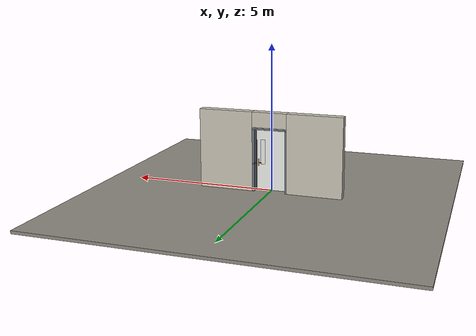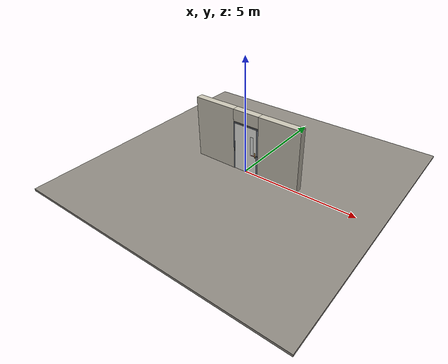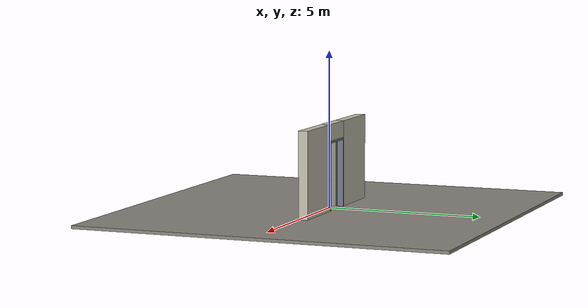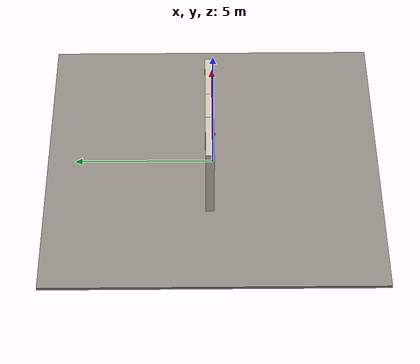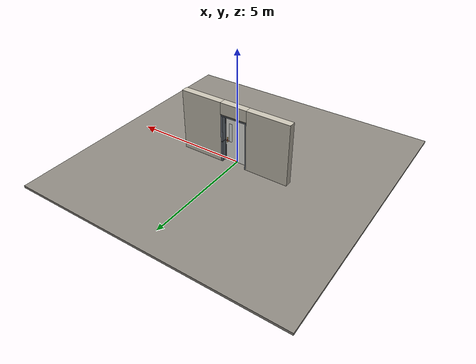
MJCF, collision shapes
<?xml version="1.0" ?>
<mujoco model="db0513_swing_single_full">
  <compiler angle="radian" meshdir="../../hardware" texturedir="../../textures" autolimits="true" inertiafromgeom="false"/>
  <option timestep="0.002" integrator="implicitfast" cone="elliptic" impratio="10" noslip_iterations="3">
    <flag multiccd="enable"/>
  </option>
  <size memory="16M"/>
  <default>
    <geom condim="4" solref="0.005 1" solimp="0.95 0.99 0.001"/>
    <joint solreflimit="0.005 1" solimplimit="0.95 0.99 0.001"/>
    <tendon solreflimit="0.005 1"/>
    <equality solref="0.002 1"/>
  </default>
  <visual>
    <headlight ambient="0.4 0.4 0.4" diffuse="0.7 0.7 0.7" specular="0.2 0.2 0.2"/>
    <quality shadowsize="4096"/>
    <map znear="0.01" zfar="60"/>
  </visual>
  <asset>
    <mesh name="hinge_e22b26c0c1" file="hinge_e22b26c0c1.obj"/>
    <mesh name="hinge_jamb_e1d088f8dc" file="hinge_jamb_e1d088f8dc.obj"/>
    <mesh name="lever_6fbb1e9593" file="lever_6fbb1e9593.obj"/>
    <material name="mat_floor" rgba="0.55 0.53 0.5 1" specular="0.2" shininess="0.15" reflectance="0"/>
    <material name="mat_wall" rgba="0.78 0.76 0.7 1" specular="0.2" shininess="0.1" reflectance="0"/>
    <material name="mat_leaf" rgba="0.93 0.93 0.91 1" specular="0.23" shininess="0.31" reflectance="0.02"/>
    <material name="mat_glass" rgba="0.85 0.92 0.95 0.25" specular="0.2" shininess="0.95" reflectance="0.1"/>
    <material name="mat_hinge" rgba="0.65 0.66 0.68 1" specular="0.74" shininess="0.5" reflectance="0.36"/>
    <material name="mat_op_brass" rgba="0.85 0.66 0.3 1" specular="0.8" shininess="0.75" reflectance="0.4"/>
    <material name="mat_trim" rgba="0.85 0.66 0.3 1" specular="0.8" shininess="0.75" reflectance="0.4"/>
    <material name="mat_bolt" rgba="0.85 0.66 0.3 1" specular="0.8" shininess="0.75" reflectance="0.4"/>
    <material name="mat_frame" rgba="0.45 0.48 0.52 1" specular="0.32" shininess="0.6" reflectance="0.08"/>
    <texture name="skybox" type="skybox" builtin="gradient" rgb1="0.6 0.7 0.85" rgb2="0.9 0.92 0.95" width="256" height="256"/>
  </asset>
  <worldbody>
    <light name="sun" pos="1.5 -2.5 4" dir="-0.3 0.5 -0.8" directional="true" diffuse="0.8 0.8 0.8" specular="0.3 0.3 0.3" castshadow="true"/>
    <light name="fill" pos="-1.5 2.5 3" dir="0.3 -0.5 -0.7" directional="true" diffuse="0.35 0.35 0.4" castshadow="false"/>
    <camera name="robot_view" pos="0 -2.516812 1.812087" xyaxes="1 0 0 0 0.26963 0.962964" fovy="52"/>
    <camera name="far_view" pos="0 2.758812 1.812087" xyaxes="-1 0 0 0 -0.26963 0.962964" fovy="52"/>
    <camera name="iso" pos="2.004737 -2.094762 2.234138" xyaxes="0.741536 0.670913 0 -0.242917 0.268487 0.932151" fovy="46"/>
    <camera name="detail_handle" pos="0.539 -0.877 1.245" xyaxes="0.97561 0.219512 0 -0.070934 0.315262 0.94635" fovy="38"/>
    <geom name="floor" type="box" size="6 6 0.05" pos="0 0 -0.05" material="mat_floor" group="0" contype="1" conaffinity="1" friction="0.8 0.005 0.0001" density="2400"/>
    <geom name="wall_left" type="box" size="0.9565 0.15 1.3735" pos="-1.5435 0.121 1.3735" material="mat_wall" group="0" contype="1" conaffinity="1" friction="0.6 0.005 0.0001" density="800"/>
    <geom name="wall_right" type="box" size="0.9415 0.15 1.3735" pos="1.5585 0.121 1.3735" material="mat_wall" group="0" contype="1" conaffinity="1" friction="0.6 0.005 0.0001" density="800"/>
    <geom name="wall_header" type="box" size="0.602 0.15 0.26" pos="0.015 0.121 2.487" material="mat_wall" group="0" contype="1" conaffinity="1" friction="0.6 0.005 0.0001" density="800"/>
    <geom name="hinge_0_jamb" type="mesh" mesh="hinge_jamb_e1d088f8dc" pos="-0.534 -0.029 0.259" material="mat_hinge" group="1" contype="0" conaffinity="0" density="7850"/>
    <geom name="hinge_1_jamb" type="mesh" mesh="hinge_jamb_e1d088f8dc" pos="-0.534 -0.029 1.076" material="mat_hinge" group="1" contype="0" conaffinity="0" density="7850"/>
    <geom name="hinge_2_jamb" type="mesh" mesh="hinge_jamb_e1d088f8dc" pos="-0.534 -0.029 1.963" material="mat_hinge" group="1" contype="0" conaffinity="0" density="7850"/>
    <geom name="jamb_hinge" type="box" size="0.025 0.15 1.0735" pos="-0.562 0.121 1.0735" material="mat_frame" group="0" contype="1" conaffinity="1" friction="0.6 0.005 0.0001" density="300"/>
    <geom name="strike_965_wall_n" type="box" size="0.04 0.131575 0.0167" pos="0.577 0.139425 0.965" material="mat_frame" group="0" contype="1" conaffinity="1" friction="0.6 0.005 0.0001" density="300"/>
    <geom name="strike_965_wall_p" type="box" size="0.04 0.008 0.0167" pos="0.577 -0.01585 0.965" material="mat_frame" group="0" contype="1" conaffinity="1" friction="0.6 0.005 0.0001" density="300"/>
    <geom name="strike_965_ramp" type="box" size="0.04 0.01649 0.0167" pos="0.580236 -0.022234 0.965" quat="0.977148 0 0 0.212558" material="mat_frame" group="0" contype="1" conaffinity="1" friction="0.12 0.005 0.0001" density="300"/>
    <geom name="strike_965_back" type="box" size="0.03165 0.00785 0.0167" pos="0.58535 0 0.965" material="mat_frame" group="0" contype="1" conaffinity="1" friction="0.6 0.005 0.0001" density="300"/>
    <geom name="jamb_strike_0" type="box" size="0.04 0.15 0.47415" pos="0.577 0.121 0.47415" material="mat_frame" group="0" contype="1" conaffinity="1" friction="0.6 0.005 0.0001" density="300"/>
    <geom name="jamb_strike_1" type="box" size="0.04 0.15 0.58265" pos="0.577 0.121 1.56435" material="mat_frame" group="0" contype="1" conaffinity="1" friction="0.6 0.005 0.0001" density="300"/>
    <geom name="jamb_head" type="box" size="0.602 0.15 0.025" pos="0.015 0.121 2.172" material="mat_frame" group="0" contype="1" conaffinity="1" friction="0.6 0.005 0.0001" density="300"/>
    <geom name="head_stud" type="box" size="0.602 0.15 0.015" pos="0.015 0.121 2.212" material="mat_wall" group="0" contype="1" conaffinity="1" friction="0.6 0.005 0.0001" density="500"/>
    <geom name="stop_hinge" type="box" size="0.0055 0.016 1.0735" pos="-0.5315 0.0385 1.0735" material="mat_frame" group="0" contype="1" conaffinity="1" friction="0.6 0.005 0.0001" density="300"/>
    <geom name="stop_strike" type="box" size="0.0055 0.016 1.0735" pos="0.5315 0.0385 1.0735" material="mat_frame" group="0" contype="1" conaffinity="1" friction="0.6 0.005 0.0001" density="300"/>
    <geom name="stop_head" type="box" size="0.537 0.016 0.0055" pos="0 0.0385 2.1415" material="mat_frame" group="0" contype="1" conaffinity="1" friction="0.6 0.005 0.0001" density="300"/>
    <site name="approach_point" pos="0 -1.5 0" quat="1 0 0 0" size="0.05" rgba="0.2 0.9 0.2 0.5" group="4"/>
    <site name="goal_point" pos="0 1.5 0" quat="1 0 0 0" size="0.05" rgba="0.2 0.9 0.2 0.5" group="4"/>
    <site name="door_plane_center" pos="0 0 1.0735" quat="1 0 0 0" size="0.02" rgba="0.2 0.9 0.2 0.5" group="4"/>
    <body name="leaf" pos="-0.537 0 0">
      <inertial pos="0.529562 -0.000313 1.075886" mass="44.436056" quat="0.500005 -0.499159 -0.500831 -0.500003" diaginertia="4.396964058 16.870807419 21.252687128"/>
      <joint name="leaf_hinge" type="hinge" axis="0 0 -1" pos="0.003 -0.029 0" limited="true" range="0 1.570796" damping="0.54954" frictionloss="1.436917" armature="0.02"/>
      <geom name="leaf_slab" type="box" size="0.5335 0.022 1.067" pos="0.5365 0 1.076" material="mat_leaf" group="0" contype="1" conaffinity="1" friction="0.4 0.005 0.0001" density="1"/>
      <geom name="leaf_glass_0" type="box" size="0.075 0.0228 0.4268" pos="0.84763 0 1.33208" material="mat_glass" group="1" contype="0" conaffinity="0" density="1"/>
      <geom name="hinge_0" type="mesh" mesh="hinge_e22b26c0c1" pos="0.003 -0.029 0.259" material="mat_hinge" group="1" contype="0" conaffinity="0" density="7850"/>
      <geom name="hinge_1" type="mesh" mesh="hinge_e22b26c0c1" pos="0.003 -0.029 1.076" material="mat_hinge" group="1" contype="0" conaffinity="0" density="7850"/>
      <geom name="hinge_2" type="mesh" mesh="hinge_e22b26c0c1" pos="0.003 -0.029 1.963" material="mat_hinge" group="1" contype="0" conaffinity="0" density="7850"/>
      <geom name="leaf_handle_escutcheon_n" type="box" size="0.0225 0.0015 0.12" pos="1 -0.0235 0.965" material="mat_op_brass" group="1" contype="0" conaffinity="0" density="3000"/>
      <geom name="leaf_handle_escutcheon_p" type="box" size="0.0225 0.0015 0.12" pos="1 0.0235 0.965" material="mat_op_brass" group="1" contype="0" conaffinity="0" density="3000"/>
      <geom name="leaf_latch_bolt_faceplate" type="box" size="0.0006 0.01235 0.0267" pos="1.0694 0 0.965" material="mat_bolt" group="1" contype="0" conaffinity="0" density="8500"/>
      <site name="leaf_edge_mid" pos="1.07 0 1.067" quat="1 0 0 0" size="0.02" rgba="0.2 0.9 0.2 0.5" group="4"/>
      <body name="leaf_handle" pos="1 0 0.965">
        <inertial pos="-0.040022 0 0" mass="0.836698" quat="0.707107 0 0 -0.707107" diaginertia="0.001688823 0.003812607 0.00545529"/>
        <joint name="leaf_handle_hinge" type="hinge" axis="0 -1 0" limited="true" range="0 0.7" damping="0.270116" frictionloss="0.064" stiffness="1.4" springref="-0.428571" armature="0.01"/>
        <geom name="leaf_handle_spindle" type="cylinder" size="0.006 0.034" pos="0 0 0" quat="0.707107 -0.707107 0 0" material="mat_op_brass" group="1" contype="0" conaffinity="0" density="7850"/>
        <geom name="leaf_handle_lever_n" type="mesh" mesh="lever_6fbb1e9593" pos="0 -0.022 0" quat="0.707107 0.707107 0 0" material="mat_op_brass" group="1" contype="0" conaffinity="0" density="3000"/>
        <geom name="leaf_handle_lever_col_n" type="capsule" size="0.01 0.055" pos="-0.065 -0.077 0" quat="0.707107 0 -0.707107 0" material="mat_op_brass" group="3" contype="1" conaffinity="1" rgba="0.8 0.3 0.3 0.25" friction="0.7 0.01 0.0001" density="3000"/>
        <geom name="leaf_handle_hub_col_n" type="cylinder" size="0.012 0.022" pos="0 -0.052 0" quat="0.707107 -0.707107 0 0" material="mat_op_brass" group="3" contype="1" conaffinity="1" rgba="0.8 0.3 0.3 0.25" friction="0.6 0.005 0.0001" density="3000"/>
        <geom name="leaf_handle_lever_p" type="mesh" mesh="lever_6fbb1e9593" pos="0 0.022 0" quat="-0.707107 0.707107 0 0" material="mat_op_brass" group="1" contype="0" conaffinity="0" density="3000"/>
        <geom name="leaf_handle_lever_col_p" type="capsule" size="0.01 0.055" pos="-0.065 0.077 0" quat="0.707107 0 -0.707107 0" material="mat_op_brass" group="3" contype="1" conaffinity="1" rgba="0.8 0.3 0.3 0.25" friction="0.7 0.01 0.0001" density="3000"/>
        <geom name="leaf_handle_hub_col_p" type="cylinder" size="0.012 0.022" pos="0 0.052 0" quat="0.707107 -0.707107 0 0" material="mat_op_brass" group="3" contype="1" conaffinity="1" rgba="0.8 0.3 0.3 0.25" friction="0.6 0.005 0.0001" density="3000"/>
        <site name="leaf_handle_grip_n" pos="-0.104 -0.077 0" quat="1 0 0 0" size="0.012" rgba="0.2 0.9 0.2 0.5" group="4"/>
        <site name="leaf_handle_grip_p" pos="-0.104 0.077 0" quat="1 0 0 0" size="0.012" rgba="0.2 0.9 0.2 0.5" group="4"/>
      </body>
      <body name="leaf_latch_bolt" pos="1.07 0 0.965">
        <inertial pos="-0.00865 0 0" mass="0.041419" quat="0.92388 -0.382683 0 0" diaginertia="0.000000798 0.000005598 0.000005598"/>
        <joint name="leaf_latch_bolt_slide" type="slide" axis="-1 0 0" limited="true" range="0 0.0127" damping="2" frictionloss="0.3" stiffness="300" springref="-0.008333" armature="0.1"/>
        <geom name="leaf_latch_bolt_capsule" type="capsule" size="0.00635 0.015" pos="-0.00865 0 0" quat="0.707107 0 0.707107 0" material="mat_bolt" group="0" contype="1" conaffinity="1" friction="0.2 0.005 0.0001" density="8500"/>
      </body>
    </body>
  </worldbody>
  <tendon>
    <fixed name="leaf_latch_bolt_coupling" limited="true" range="0 10">
      <joint joint="leaf_latch_bolt_slide" coef="1"/>
      <joint joint="leaf_handle_hinge" coef="-0.019242"/>
    </fixed>
  </tendon>
  <sensor>
    <jointpos name="leaf_hinge_pos" joint="leaf_hinge"/>
    <jointvel name="leaf_hinge_vel" joint="leaf_hinge"/>
    <jointpos name="leaf_handle_hinge_pos" joint="leaf_handle_hinge"/>
    <jointvel name="leaf_handle_hinge_vel" joint="leaf_handle_hinge"/>
    <jointpos name="leaf_latch_bolt_slide_pos" joint="leaf_latch_bolt_slide"/>
    <jointvel name="leaf_latch_bolt_slide_vel" joint="leaf_latch_bolt_slide"/>
  </sensor>
</mujoco>
